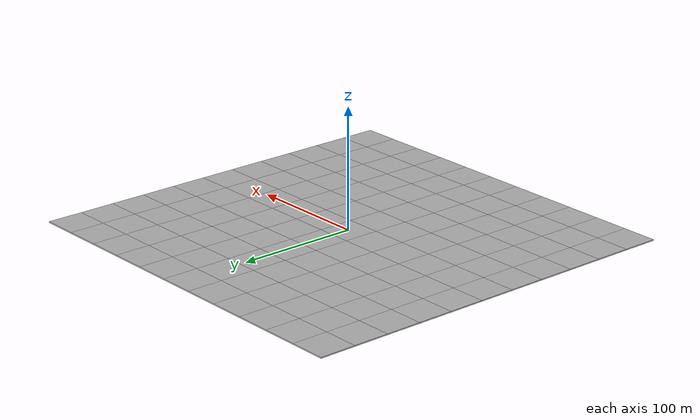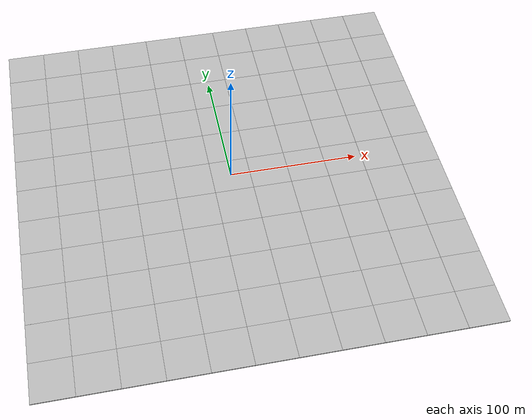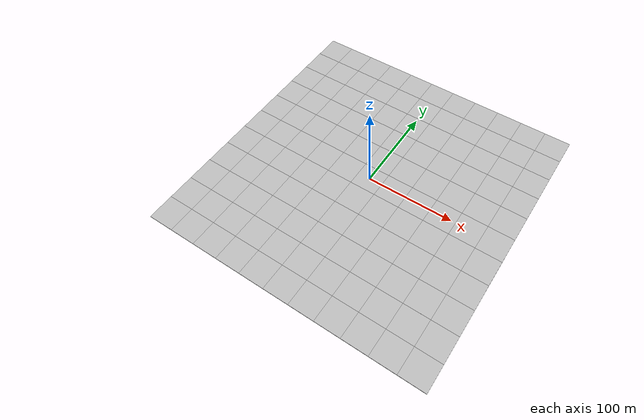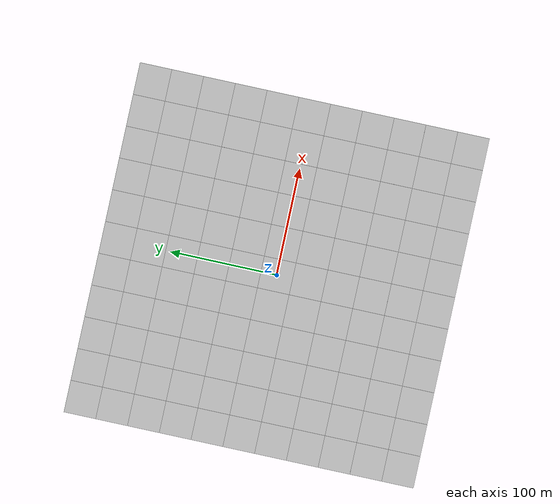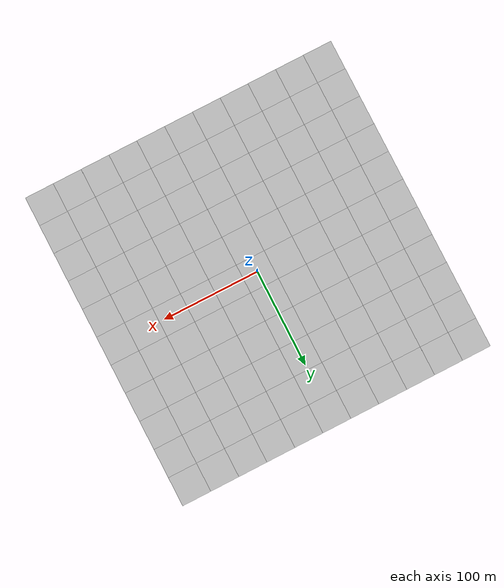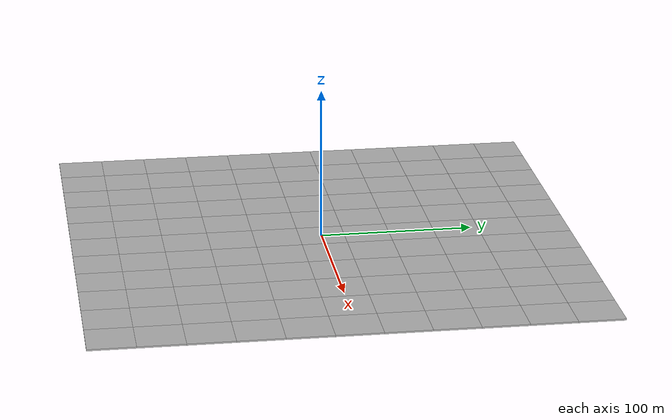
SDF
<?xml version="1.0" ?>
<sdf version="1.4">
  <world name="default">
    <include>
      <uri>model://sun</uri>
    </include>

    <include>
      <uri>model://clockhouse_vanity_satellite</uri>
    </include>

    <physics type='ode'>
      <max_step_size>0.005</max_step_size>
      <real_time_factor>1</real_time_factor>
      <real_time_update_rate>200</real_time_update_rate>
      <gravity>0 0 -9.8</gravity>
    </physics>

    <scene>
      <ambient>0.7 0.7 0.7 1</ambient>
    </scene>

  </world>
</sdf>
